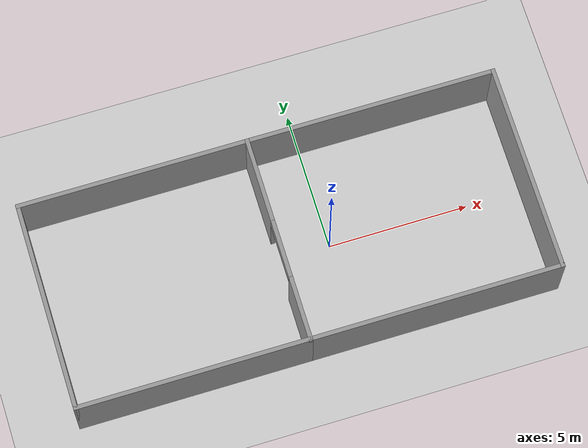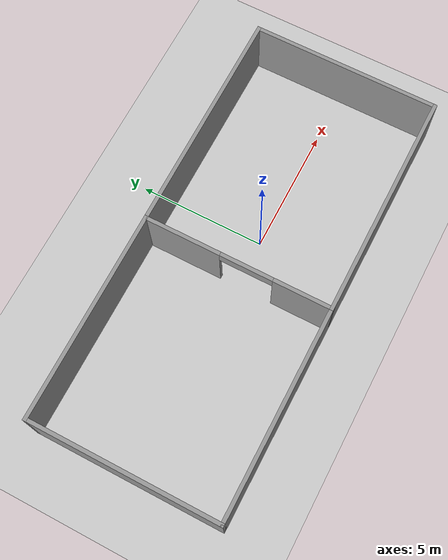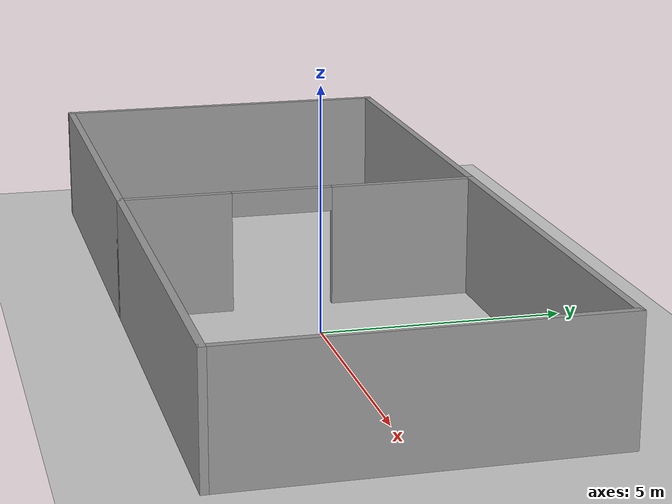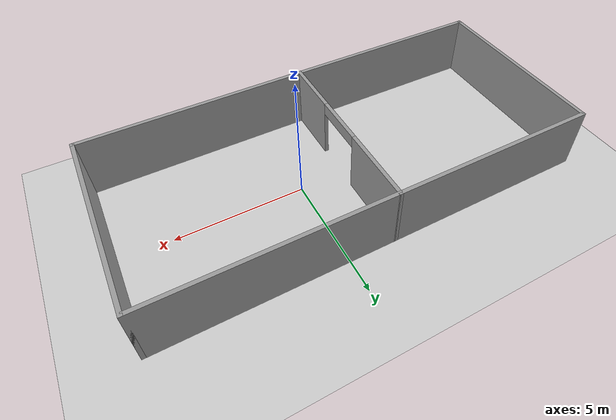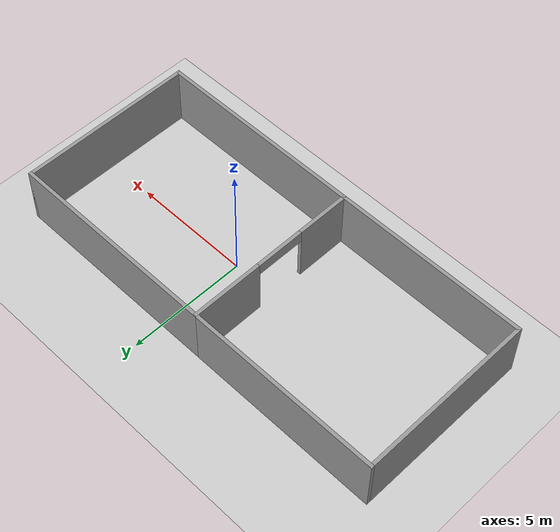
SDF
<sdf version="1.7">
 <world name="default">
  <light name="sun" type="directional">
   <pose>0 0 10 0 -0 0</pose>
   <diffuse>0.8 0.8 0.8 1</diffuse>
   <specular>0.2 0.2 0.2 1</specular>
   <attenuation>
    <range>1000</range>
    <constant>0.9</constant>
    <linear>0.01</linear>
    <quadratic>0.001</quadratic>
   </attenuation>
   <direction>-0.5 0.1 -0.9</direction>
   <spot><inner_angle>0</inner_angle><outer_angle>0</outer_angle><falloff>0</falloff></spot>
  </light>
  <model name="ground_plane">
   <static>1</static>
   <link name="link">
    <collision name="collision">
     <geometry><plane><normal>0 0 1</normal><size>100 100</size></plane></geometry>
     <surface><friction><ode><mu>100</mu><mu2>50</mu2></ode></friction></surface>
    </collision>
    <visual name="visual">
     <cast_shadows>0</cast_shadows>
     <geometry><plane><normal>0 0 1</normal><size>100 100</size></plane></geometry>
     <material>
      <script><uri>file://media/materials/scripts/gazebo.material</uri><name>Gazebo/Grey</name></script>
     </material>
    </visual>
   </link>
  </model>
  <gravity>0 0 -9.8</gravity>
  <magnetic_field>6e-06 2.3e-05 -4.2e-05</magnetic_field>
  <atmosphere type="adiabatic"/>
  <physics type="ode">
   <max_step_size>0.001</max_step_size>
   <real_time_factor>1</real_time_factor>
   <real_time_update_rate>1000</real_time_update_rate>
  </physics>
  <scene><ambient>0.4 0.4 0.4 1</ambient><background>0.7 0.7 0.7 1</background><shadows>1</shadows></scene>
  <audio><device>default</device></audio>
  <spherical_coordinates>
   <surface_model>EARTH_WGS84</surface_model>
   <latitude_deg>0</latitude_deg>
   <longitude_deg>0</longitude_deg>
   <elevation>0</elevation>
   <heading_deg>0</heading_deg>
  </spherical_coordinates>
  <model name="map_test_4">
   <pose>-1.4602 -0.001453 0 0 -0 0</pose>
   <link name="Wall_0">
    <collision name="Wall_0_Collision">
     <geometry><box><size>9 0.15 2.5</size></box></geometry>
     <pose>0 0 1.25 0 -0 0</pose>
    </collision>
    <visual name="Wall_0_Visual">
     <pose>0 0 1.25 0 -0 0</pose>
     <geometry><box><size>9 0.15 2.5</size></box></geometry>
     <material>
      <script><uri>file://media/materials/scripts/gazebo.material</uri><name>Gazebo/Grey</name></script>
      <ambient>1 1 1 1</ambient>
     </material>
     <meta><layer>0</layer></meta>
    </visual>
    <pose>4.05 3.675 0 0 -0 0</pose>
   </link>
   <link name="Wall_1">
    <collision name="Wall_1_Collision">
     <geometry><box><size>7.5 0.15 2.5</size></box></geometry>
     <pose>0 0 1.25 0 -0 0</pose>
    </collision>
    <visual name="Wall_1_Visual">
     <pose>0 0 1.25 0 -0 0</pose>
     <geometry><box><size>7.5 0.15 2.5</size></box></geometry>
     <material>
      <script><uri>file://media/materials/scripts/gazebo.material</uri><name>Gazebo/Grey</name></script>
      <ambient>1 1 1 1</ambient>
     </material>
     <meta><layer>0</layer></meta>
    </visual>
    <pose>8.475 -0 0 0 -0 -1.5708</pose>
   </link>
   <link name="Wall_2">
    <collision name="Wall_2_Collision">
     <geometry><box><size>9 0.15 2.5</size></box></geometry>
     <pose>0 0 1.25 0 -0 0</pose>
    </collision>
    <visual name="Wall_2_Visual">
     <pose>0 0 1.25 0 -0 0</pose>
     <geometry><box><size>9 0.15 2.5</size></box></geometry>
     <material>
      <script><uri>file://media/materials/scripts/gazebo.material</uri><name>Gazebo/Grey</name></script>
      <ambient>1 1 1 1</ambient>
     </material>
     <meta><layer>0</layer></meta>
    </visual>
    <pose>4.05 -3.675 0 0 -0 3.14159</pose>
   </link>
   <link name="Wall_3">
    <pose>-0.375 -0 0 0 -0 1.5708</pose>
    <visual name="Wall_3_Visual_0">
     <pose>-2.57908 0 1.25 0 -0 0</pose>
     <geometry><box><size>2.34184 0.15 2.5</size></box></geometry>
     <material>
      <script><uri>file://media/materials/scripts/gazebo.material</uri><name>Gazebo/Grey</name></script>
      <ambient>1 1 1 1</ambient>
     </material>
     <meta><layer>0</layer></meta>
    </visual>
    <collision name="Wall_3_Collision_0">
     <geometry><box><size>2.34184 0.15 2.5</size></box></geometry>
     <pose>-2.57908 0 1.25 0 -0 0</pose>
    </collision>
    <visual name="Wall_3_Visual_1">
     <pose>2.21427 0 1.25 0 -0 0</pose>
     <geometry><box><size>3.07146 0.15 2.5</size></box></geometry>
     <material>
      <script><uri>file://media/materials/scripts/gazebo.material</uri><name>Gazebo/Grey</name></script>
      <ambient>1 1 1 1</ambient>
     </material>
     <meta><layer>0</layer></meta>
    </visual>
    <collision name="Wall_3_Collision_1">
     <geometry><box><size>3.07146 0.15 2.5</size></box></geometry>
     <pose>2.21427 0 1.25 0 -0 0</pose>
    </collision>
    <visual name="Wall_3_Visual_2">
     <pose>-0.364811 0 2.25 0 -0 0</pose>
     <geometry><box><size>2.0867 0.15 0.5</size></box></geometry>
     <material>
      <script><uri>file://media/materials/scripts/gazebo.material</uri><name>Gazebo/Grey</name></script>
      <ambient>1 1 1 1</ambient>
     </material>
     <meta><layer>0</layer></meta>
    </visual>
    <collision name="Wall_3_Collision_2">
     <geometry><box><size>2.0867 0.15 0.5</size></box></geometry>
     <pose>-0.364811 0 2.25 0 -0 0</pose>
    </collision>
   </link>
   <link name="Wall_4">
    <collision name="Wall_4_Collision">
     <geometry><box><size>8.25 0.15 2.5</size></box></geometry>
     <pose>0 0 1.25 0 -0 0</pose>
    </collision>
    <visual name="Wall_4_Visual">
     <pose>0 0 1.25 0 -0 0</pose>
     <geometry><box><size>8.25 0.15 2.5</size></box></geometry>
     <material>
      <script><uri>file://media/materials/scripts/gazebo.material</uri><name>Gazebo/Grey</name></script>
      <ambient>1 1 1 1</ambient>
     </material>
     <meta><layer>0</layer></meta>
    </visual>
    <pose>-4.425 3.675 0 0 -0 3.14159</pose>
   </link>
   <link name="Wall_5">
    <collision name="Wall_5_Collision">
     <geometry><box><size>7.5 0.15 2.5</size></box></geometry>
     <pose>0 0 1.25 0 -0 0</pose>
    </collision>
    <visual name="Wall_5_Visual">
     <pose>0 0 1.25 0 -0 0</pose>
     <geometry><box><size>7.5 0.15 2.5</size></box></geometry>
     <material>
      <script><uri>file://media/materials/scripts/gazebo.material</uri><name>Gazebo/Grey</name></script>
      <ambient>1 1 1 1</ambient>
     </material>
     <meta><layer>0</layer></meta>
    </visual>
    <pose>-8.475 -0 0 0 -0 -1.5708</pose>
   </link>
   <link name="Wall_6">
    <collision name="Wall_6_Collision">
     <geometry><box><size>8.25 0.15 2.5</size></box></geometry>
     <pose>0 0 1.25 0 -0 0</pose>
    </collision>
    <visual name="Wall_6_Visual">
     <pose>0 0 1.25 0 -0 0</pose>
     <geometry><box><size>8.25 0.15 2.5</size></box></geometry>
     <material>
      <script><uri>file://media/materials/scripts/gazebo.material</uri><name>Gazebo/Grey</name></script>
      <ambient>1 1 1 1</ambient>
     </material>
     <meta><layer>0</layer></meta>
    </visual>
    <pose>-4.425 -3.675 0 0 -0 0</pose>
   </link>
   <static>1</static>
  </model>
 </world>
</sdf>
